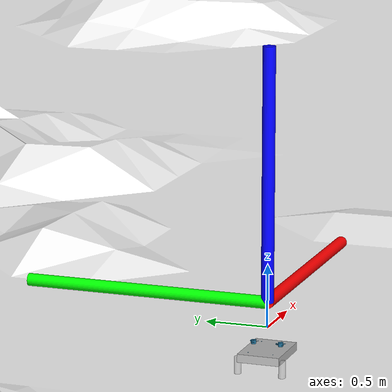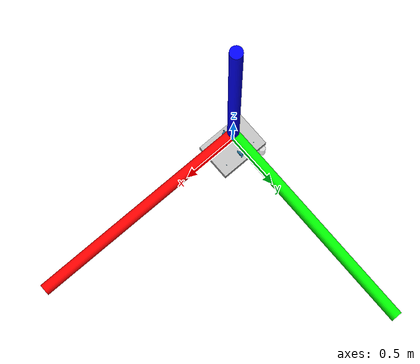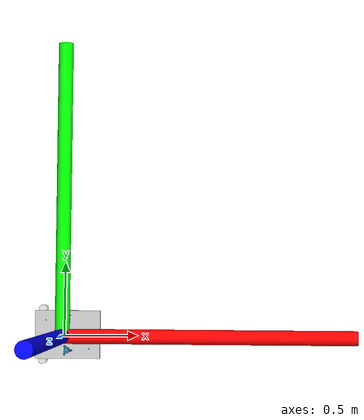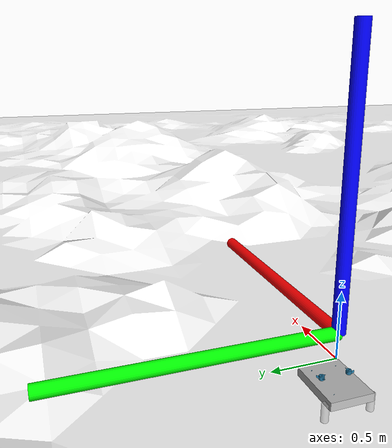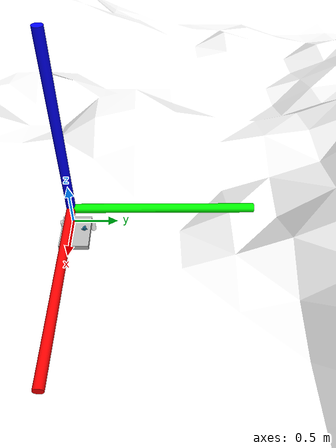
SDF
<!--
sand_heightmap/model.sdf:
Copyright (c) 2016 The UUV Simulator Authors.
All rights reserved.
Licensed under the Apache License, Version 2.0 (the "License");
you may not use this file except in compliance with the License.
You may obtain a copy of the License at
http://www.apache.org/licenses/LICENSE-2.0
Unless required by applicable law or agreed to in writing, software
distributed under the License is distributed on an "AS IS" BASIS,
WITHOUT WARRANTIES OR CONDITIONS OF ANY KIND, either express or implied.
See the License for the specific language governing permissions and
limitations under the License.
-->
<?xml version="1.0" ?>
<sdf version="1.6">
  <world name="sand">
    <!-- Base Gazebo plugins -->
    <plugin
      filename="gz-sim-physics-system"
      name="gz::sim::systems::Physics">
    </plugin>
    <plugin
      filename="gz-sim-user-commands-system"
      name="gz::sim::systems::UserCommands">
    </plugin>
    <plugin
      filename="gz-sim-scene-broadcaster-system"
      name="gz::sim::systems::SceneBroadcaster">
    </plugin>
    <plugin
      filename="gz-sim-sensors-system"
      name="gz::sim::systems::Sensors">
    </plugin>

    <!-- IMU plugin manages all IMU sensors -->
    <plugin
      filename="libgz-sim-imu-system.so"
      name="gz::sim::systems::Imu">
    </plugin>

    <!-- DVL plugin manages the DVL sensor -->

    <!-- Buoyancy plugin manages buoyancy for all models -->
    <plugin
      filename="gz-sim-buoyancy-system"
      name="gz::sim::systems::Buoyancy">
      <!-- Fluid density is 1 (air) above 0 and 1000 (water) below 0 -->
      <graded_buoyancy>
        <default_density>1000</default_density>
        <density_change>
          <above_depth>0</above_depth>
          <density>1</density>
        </density_change>
      </graded_buoyancy>
      <!-- Enable by model name -->
      <enable>orca4</enable>
    </plugin>

    <include>
      <uri>https://fuel.gazebosim.org/1.0/OpenRobotics/models/Sun</uri>
    </include>

    <include>
     <uri>model://sand_heightmap</uri>
     <pose>0 7 -10 0 0 0</pose>
    </include>

    <include>
      <uri>model://orca4</uri>
      <pose>0 0 -0.2 0 0 0</pose>
    </include>

    <include>
     <uri>model://axes</uri>
     <pose>0 0 0.2 0 0 0</pose>
    </include>
  </world>
</sdf>

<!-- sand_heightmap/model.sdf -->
<sdf version="1.5">
  <model name="sand_heightmap">
    <static>true</static>
    <link name="link">
      <collision name="ground">
        <pose>0 0 0 0 0 0</pose>
        <geometry>
          <mesh>
            <scale>0.5 0.5 0.25</scale>
            <uri>model://sand_heightmap/meshes/sandseabed.dae</uri>
          </mesh>
        </geometry>
        <max_contacts>0</max_contacts>
      </collision>
      <visual name="ground_sand">
        <cast_shadows>true</cast_shadows>
        <pose>0 0 0 0 0 0</pose>
        <geometry>
          <mesh>
            <scale>0.5 0.5 0.25</scale>
            <uri>model://sand_heightmap/meshes/sandseabed.dae</uri>
          </mesh>
        </geometry>
        <material>
          <ambient>1 1 1 1</ambient>
          <diffuse>1 1 1 1</diffuse>
          <specular>0.1 0.1 0.1 0.1</specular>
          <pbr>
            <metal>
              <albedo_map>materials/soil_sand_0045_01.jpg</albedo_map>
              <normal_map>materials/flat_normal.png</normal_map>
              <roughness>0.9</roughness>
              <metalness>0.01</metalness>
            </metal>
          </pbr>
        </material>
      </visual>
    </link>
  </model>
</sdf>

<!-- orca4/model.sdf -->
<sdf version="1.6">
  <model name="orca4">
    <pose>0 0 0 0 0 0</pose>

    <!-- BlueROV2 thruster reference: http://www.ardusub.com/introduction/features.html -->
    <!-- fluid_density: 1000 -->
    <!-- displaced_mass: 10.05 -->

    <link name="base_link">
      <inertial>
        <pose>0 0 0.011 0 0 0</pose>
        <mass>10</mass>
        <inertia>
          <ixx>0.09873097998042396</ixx>
          <ixy>0</ixy>
          <ixz>0</ixz>
          <iyy>0.17756847998042397</iyy>
          <iyz>0</iyz>
          <izz>0.2692441666666667</izz>
        </inertia>
      </inertial>

      <visual name="base_link_visual">
        <geometry>
          <box>
            <size>0.457 0.338 0.06506286173008947</size>
          </box>
        </geometry>
      </visual>

      <!-- Collision volume * fluid_density == displaced mass, used by BuoyancyPlugin -->
      <collision name="base_link_collision">
        <pose>0 0 0.06 0 0 0</pose>
        <geometry>
          <box>
            <size>0.457 0.338 0.06506286173008947</size>
          </box>
        </geometry>
      </collision>

      <!-- IMU sensor gyro and accel data will be sent to ArduSub -->
      <sensor name="imu_sensor" type="imu">
        <!-- Transform from the Gazebo body frame (x-forward, y-left, z-up)
             to the ArduPilot body frame (x-forward, y-right, z-down) -->
        <pose degrees="true">0.1 -0.2 0.3 180 90 -45</pose>
        <always_on>1</always_on>
        <update_rate>500.0</update_rate>
      </sensor>

      <!-- Bottom facing DVL sensor to measure the vehicle's velocity -->
    </link>

    <!-- Hydrodynamics plugin -->
    <plugin
        filename="gz-sim-hydrodynamics-system"
        name="gz::sim::systems::Hydrodynamics">
      <link_name>base_link</link_name>
      <water_density>1000</water_density>
      <!-- Added mass: -->
      <xDotU>0</xDotU>
      <yDotV>0</yDotV>
      <zDotW>0</zDotW>
      <kDotP>0</kDotP>
      <mDotQ>0</mDotQ>
      <nDotR>0</nDotR>
      <!-- First order stability derivative: -->
      <xU>0</xU>
      <yV>0</yV>
      <zW>0</zW>
      <kP>0</kP>
      <mQ>0</mQ>
      <nR>0</nR>
      <!-- Second order stability derivative: -->
      <xUabsU>-33.800000000000004</xUabsU>
      <yVabsV>-54.26875</yVabsV>
      <zWabsW>-73.37135</zWabsW>
      <kPabsP>-4.0</kPabsP>
      <mQabsQ>-4.0</mQabsQ>
      <nRabsR>-4.0</nRabsR>
    </plugin>

    <link name="thruster1">
      <pose>0.14 -0.092 0 -1.5707963267948966 1.5707963267948966 -0.7853981633974483</pose>
      <visual name="thruster_prop_visual">
        <pose>0 0 0 1.5707963267948966 0 0</pose>
        <geometry>
          <mesh>
            <uri>model://orca4/meshes/t200-cw-prop.dae</uri>
          </mesh>
        </geometry>
      </visual>
      <inertial>
        <mass>0.002</mass>
        <inertia>
          <ixx>0.001</ixx>
          <ixy>0</ixy>
          <ixz>0</ixz>
          <iyy>0.001</iyy>
          <iyz>0</iyz>
          <izz>0.001</izz>
        </inertia>
      </inertial>
    </link>

    <link name="thruster2">
      <pose>0.14 0.092 0 -1.5707963267948966 1.5707963267948966 -2.356194490192345</pose>
      <visual name="thruster_prop_visual">
        <pose>0 0 0 -1.5707963267948966 0 0</pose>
        <geometry>
          <mesh>
            <uri>model://orca4/meshes/t200-ccw-prop.dae</uri>
          </mesh>
        </geometry>
      </visual>
      <inertial>
        <mass>0.002</mass>
        <inertia>
          <ixx>0.001</ixx>
          <ixy>0</ixy>
          <ixz>0</ixz>
          <iyy>0.001</iyy>
          <iyz>0</iyz>
          <izz>0.001</izz>
        </inertia>
      </inertial>
    </link>

    <link name="thruster3">
      <pose>-0.14 -0.092 0 -1.5707963267948966 1.5707963267948966 0.7853981633974483</pose>
      <visual name="thruster_prop_visual">
        <pose>0 0 0 -1.5707963267948966 0 0</pose>
        <geometry>
          <mesh>
            <uri>model://orca4/meshes/t200-ccw-prop.dae</uri>
          </mesh>
        </geometry>
      </visual>
      <inertial>
        <mass>0.002</mass>
        <inertia>
          <ixx>0.001</ixx>
          <ixy>0</ixy>
          <ixz>0</ixz>
          <iyy>0.001</iyy>
          <iyz>0</iyz>
          <izz>0.001</izz>
        </inertia>
      </inertial>
    </link>

    <link name="thruster4">
      <pose>-0.14 0.092 0 -1.5707963267948966 1.5707963267948966 2.356194490192345</pose>
      <visual name="thruster_prop_visual">
        <pose>0 0 0 1.5707963267948966 0 0</pose>
        <geometry>
          <mesh>
            <uri>model://orca4/meshes/t200-cw-prop.dae</uri>
          </mesh>
        </geometry>
      </visual>
      <inertial>
        <mass>0.002</mass>
        <inertia>
          <ixx>0.001</ixx>
          <ixy>0</ixy>
          <ixz>0</ixz>
          <iyy>0.001</iyy>
          <iyz>0</iyz>
          <izz>0.001</izz>
        </inertia>
      </inertial>
    </link>

    <link name="thruster5">
      <pose>0 -0.109 0.077 0 0 0</pose>
      <visual name="thruster_prop_visual">
        <pose>0 0 0 -1.5707963267948966 0 1.5707963267948966</pose>
        <geometry>
          <mesh>
            <uri>model://orca4/meshes/t200-ccw-prop.dae</uri>
          </mesh>
        </geometry>
      </visual>
      <inertial>
        <mass>0.002</mass>
        <inertia>
          <ixx>0.001</ixx>
          <ixy>0</ixy>
          <ixz>0</ixz>
          <iyy>0.001</iyy>
          <iyz>0</iyz>
          <izz>0.001</izz>
        </inertia>
      </inertial>
    </link>

    <link name="thruster6">
      <pose>0 0.109 0.077 0 0 0</pose>
      <visual name="thruster_prop_visual">
        <pose>0 0 0 1.5707963267948966 0 1.5707963267948966</pose>
        <geometry>
          <mesh>
            <uri>model://orca4/meshes/t200-cw-prop.dae</uri>
          </mesh>
        </geometry>
      </visual>
      <inertial>
        <mass>0.002</mass>
        <inertia>
          <ixx>0.001</ixx>
          <ixy>0</ixy>
          <ixz>0</ixz>
          <iyy>0.001</iyy>
          <iyz>0</iyz>
          <izz>0.001</izz>
        </inertia>
      </inertial>
    </link>

    <joint name="thruster1_joint" type="revolute">
      <parent>base_link</parent>
      <child>thruster1</child>
      <axis>
        <xyz>0 0 -1</xyz>
      </axis>
    </joint>

    <joint name="thruster2_joint" type="revolute">
      <parent>base_link</parent>
      <child>thruster2</child>
      <axis>
        <xyz>0 0 -1</xyz>
      </axis>
    </joint>

    <joint name="thruster3_joint" type="revolute">
      <parent>base_link</parent>
      <child>thruster3</child>
      <axis>
        <xyz>0 0 -1</xyz>
      </axis>
    </joint>

    <joint name="thruster4_joint" type="revolute">
      <parent>base_link</parent>
      <child>thruster4</child>
      <axis>
        <xyz>0 0 -1</xyz>
      </axis>
    </joint>

    <joint name="thruster5_joint" type="revolute">
      <parent>base_link</parent>
      <child>thruster5</child>
      <axis>
        <xyz>0 0 -1</xyz>
      </axis>
    </joint>

    <joint name="thruster6_joint" type="revolute">
      <parent>base_link</parent>
      <child>thruster6</child>
      <axis>
        <xyz>0 0 -1</xyz>
      </axis>
    </joint>

    <plugin
        filename="gz-sim-thruster-system"
        name="gz::sim::systems::Thruster">
      <namespace>orca4</namespace>
      <joint_name>thruster1_joint</joint_name>
      <thrust_coefficient>0.02</thrust_coefficient>
      <fluid_density>1000</fluid_density>
      <propeller_diameter>0.1</propeller_diameter>
      <velocity_control>true</velocity_control>
      <use_angvel_cmd>False</use_angvel_cmd>
    </plugin>

    <plugin
        filename="gz-sim-thruster-system"
        name="gz::sim::systems::Thruster">
      <namespace>orca4</namespace>
      <joint_name>thruster2_joint</joint_name>
      <thrust_coefficient>0.02</thrust_coefficient>
      <fluid_density>1000</fluid_density>
      <propeller_diameter>0.1</propeller_diameter>
      <velocity_control>true</velocity_control>
      <use_angvel_cmd>False</use_angvel_cmd>
    </plugin>

    <plugin
        filename="gz-sim-thruster-system"
        name="gz::sim::systems::Thruster">
      <namespace>orca4</namespace>
      <joint_name>thruster3_joint</joint_name>
      <!-- Reverse spin to balance torque -->
      <thrust_coefficient>-0.02</thrust_coefficient>
      <fluid_density>1000</fluid_density>
      <propeller_diameter>0.1</propeller_diameter>
      <velocity_control>true</velocity_control>
      <use_angvel_cmd>False</use_angvel_cmd>
    </plugin>

    <plugin
        filename="gz-sim-thruster-system"
        name="gz::sim::systems::Thruster">
      <namespace>orca4</namespace>
      <joint_name>thruster4_joint</joint_name>
      <!-- Reverse spin to balance torque -->
      <thrust_coefficient>-0.02</thrust_coefficient>
      <fluid_density>1000</fluid_density>
      <propeller_diameter>0.1</propeller_diameter>
      <velocity_control>true</velocity_control>
      <use_angvel_cmd>False</use_angvel_cmd>
    </plugin>

    <plugin
        filename="gz-sim-thruster-system"
        name="gz::sim::systems::Thruster">
      <namespace>orca4</namespace>
      <joint_name>thruster5_joint</joint_name>
      <thrust_coefficient>0.02</thrust_coefficient>
      <fluid_density>1000</fluid_density>
      <propeller_diameter>0.1</propeller_diameter>
      <velocity_control>true</velocity_control>
      <use_angvel_cmd>False</use_angvel_cmd>
    </plugin>

    <plugin
        filename="gz-sim-thruster-system"
        name="gz::sim::systems::Thruster">
      <namespace>orca4</namespace>
      <joint_name>thruster6_joint</joint_name>
      <!-- Reverse spin to balance torque -->
      <thrust_coefficient>-0.02</thrust_coefficient>
      <fluid_density>1000</fluid_density>
      <propeller_diameter>0.1</propeller_diameter>
      <velocity_control>true</velocity_control>
      <use_angvel_cmd>False</use_angvel_cmd>
    </plugin>

    <plugin name="ArduPilotPlugin" filename="libArduPilotPlugin.so">
      <!-- Port settings -->
      <fdm_addr>127.0.0.1</fdm_addr>
      <fdm_port_in>9002</fdm_port_in>
      <connectionTimeoutMaxCount>5</connectionTimeoutMaxCount>
      <lock_step>1</lock_step>

      <!-- Transform from the Gazebo body frame (x-forward, y-left, z-up)
           to the ArduPilot body frame (x-forward, y-right, z-down) -->
      <modelXYZToAirplaneXForwardZDown>0 0 0 3.141592653589793 0 0</modelXYZToAirplaneXForwardZDown>

      <!-- Transform from the Gazebo world frame (ENU)
           to the ArduPilot world frame (NED) -->
      <gazeboXYZToNED>0 0 0 3.141592653589793 0 1.5707963267948966</gazeboXYZToNED>

      <!-- Sensors -->
      <imuName>imu_sensor</imuName>

      <!-- Thrusters -->
      <control channel="0">
        <jointName>thruster1_joint</jointName>
        <servo_min>1100</servo_min>
        <servo_max>1900</servo_max>
        <type>COMMAND</type>
        <cmd_topic>/model/orca4/joint/thruster1_joint/cmd_thrust</cmd_topic>
        <offset>-0.5</offset>
        <multiplier>100</multiplier>
      </control>
      <control channel="1">
        <jointName>thruster2_joint</jointName>
        <servo_min>1100</servo_min>
        <servo_max>1900</servo_max>
        <type>COMMAND</type>
        <cmd_topic>/model/orca4/joint/thruster2_joint/cmd_thrust</cmd_topic>
        <offset>-0.5</offset>
        <multiplier>100</multiplier>
      </control>
      <control channel="2">
        <jointName>thruster3_joint</jointName>
        <servo_min>1100</servo_min>
        <servo_max>1900</servo_max>
        <type>COMMAND</type>
        <cmd_topic>/model/orca4/joint/thruster3_joint/cmd_thrust</cmd_topic>
        <offset>-0.5</offset>
        <multiplier>100</multiplier>
      </control>
      <control channel="3">
        <jointName>thruster4_joint</jointName>
        <servo_min>1100</servo_min>
        <servo_max>1900</servo_max>
        <type>COMMAND</type>
        <cmd_topic>/model/orca4/joint/thruster4_joint/cmd_thrust</cmd_topic>
        <offset>-0.5</offset>
        <multiplier>100</multiplier>
      </control>
      <control channel="4">
        <jointName>thruster5_joint</jointName>
        <servo_min>1100</servo_min>
        <servo_max>1900</servo_max>
        <type>COMMAND</type>
        <cmd_topic>/model/orca4/joint/thruster5_joint/cmd_thrust</cmd_topic>
        <offset>-0.5</offset>
        <multiplier>100</multiplier>
      </control>
      <control channel="5">
        <jointName>thruster6_joint</jointName>
        <servo_min>1100</servo_min>
        <servo_max>1900</servo_max>
        <type>COMMAND</type>
        <cmd_topic>/model/orca4/joint/thruster6_joint/cmd_thrust</cmd_topic>
        <offset>-0.5</offset>
        <multiplier>100</multiplier>
      </control>

    </plugin>

    <!-- Left camera link -->
    <link name="left_camera_link">
      <pose>-0.18 0.18 -0.06749999999999999 0 0 0</pose>
      <visual name="left_camera_tube">
        <transparency>0.5</transparency>
        <geometry>
          <cylinder>
            <length>0.135</length>
            <radius>0.0275</radius>
          </cylinder>
        </geometry>
      </visual>
      <sensor name="left_camera" type="camera">
        <pose>0 0 -0.08750000000000001 0 1.5707963267948966 0</pose>
        <camera>
          <horizontal_fov>1.4</horizontal_fov>
          <image>
            <width>800</width>
            <height>600</height>
          </image>
          <clip>
            <near>0.2</near>
            <far>4</far>
          </clip>
        </camera>
        <always_on>1</always_on>
        <update_rate>5</update_rate>
        <visualize>true</visualize>
        <topic>stereo_left</topic>
      </sensor>
      <inertial>
        <mass>0.001</mass>
        <inertia>
          <ixx>0.001</ixx>
          <ixy>0</ixy>
          <ixz>0</ixz>
          <iyy>0.001</iyy>
          <iyz>0</iyz>
          <izz>0.001</izz>
        </inertia>
      </inertial>
    </link>

    <!-- Attach left_camera_link to base_link -->
    <joint name="left_camera_joint" type="fixed">
      <parent>base_link</parent>
      <child>left_camera_link</child>
    </joint>

    <!-- Right camera link -->
    <link name="right_camera_link">
      <pose>-0.18 -0.18 -0.06749999999999999 0 0 0</pose>
      <visual name="right_camera_tube">
        <transparency>0.5</transparency>
        <geometry>
          <cylinder>
            <length>0.135</length>
            <radius>0.0275</radius>
          </cylinder>
        </geometry>
      </visual>
      <sensor name="right_camera" type="camera">
        <pose>0 0 -0.08750000000000001 0 1.5707963267948966 0</pose>
        <camera>
          <horizontal_fov>1.4</horizontal_fov>
          <image>
            <width>800</width>
            <height>600</height>
          </image>
          <clip>
            <near>0.2</near>
            <far>4</far>
          </clip>
        </camera>
        <always_on>1</always_on>
        <update_rate>5</update_rate>
        <visualize>true</visualize>
        <topic>stereo_right</topic>
      </sensor>
      <inertial>
        <mass>0.001</mass>
        <inertia>
          <ixx>0.001</ixx>
          <ixy>0</ixy>
          <ixz>0</ixz>
          <iyy>0.001</iyy>
          <iyz>0</iyz>
          <izz>0.001</izz>
        </inertia>
      </inertial>
    </link>

    <!-- Attach right_camera_link to base_link -->
    <joint name="right_camera_joint" type="fixed">
      <parent>base_link</parent>
      <child>right_camera_link</child>
    </joint>

    <!-- Publish the ground-truth pose for rviz -->
    <plugin
        filename="gz-sim-odometry-publisher-system"
        name="gz::sim::systems::OdometryPublisher">
      <odom_frame>map</odom_frame>
      <robot_base_frame>orca4</robot_base_frame>
      <odom_publish_frequency>500</odom_publish_frequency>
      <dimensions>3</dimensions>
      <gaussian_noise>0.0</gaussian_noise>
    </plugin>
  </model>
</sdf>

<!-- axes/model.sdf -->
<sdf version='1.6'>
  <model name='axes'>
    <static>true</static>
    <pose>0 0 0 0 0 0</pose>

    <link name="x_axis">
      <visual name="x_visual">
        <pose degrees="true">1 0 0 90 0 90</pose>
        <geometry>
          <cylinder>
            <radius>0.05</radius>
            <length>2</length>
          </cylinder>
        </geometry>
        <material>
          <ambient>1 0 0 1</ambient>
          <diffuse>1 0 0 1</diffuse>
          <specular>1 0 0 1</specular>
        </material>
      </visual>
    </link>

    <link name="y_axis">
      <visual name="y_visual">
        <pose degrees="true">0 1 0 0 90 90</pose>
        <geometry>
          <cylinder>
            <radius>0.05</radius>
            <length>2</length>
          </cylinder>
        </geometry>
        <material>
          <ambient>0 1 0 1</ambient>
          <diffuse>0 1 0 1</diffuse>
          <specular>0 1 0 1</specular>
        </material>
      </visual>
    </link>

    <link name="z_axis">
      <visual name="z_visual">
        <pose degrees="true">0 0 1 0 0 0</pose>
        <geometry>
          <cylinder>
            <radius>0.05</radius>
            <length>2</length>
          </cylinder>
        </geometry>
        <material>
          <ambient>0 0 1 1</ambient>
          <diffuse>0 0 1 1</diffuse>
          <specular>0 0 1 1</specular>
        </material>
      </visual>
    </link>

  </model>
</sdf>
